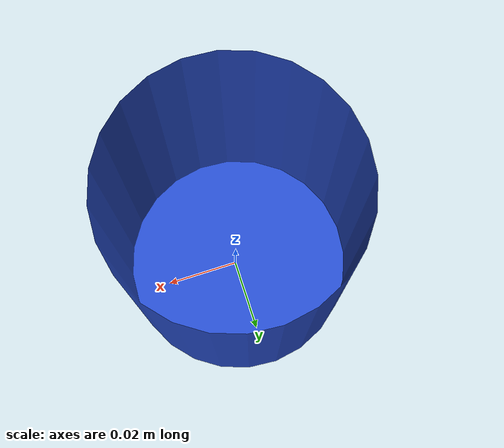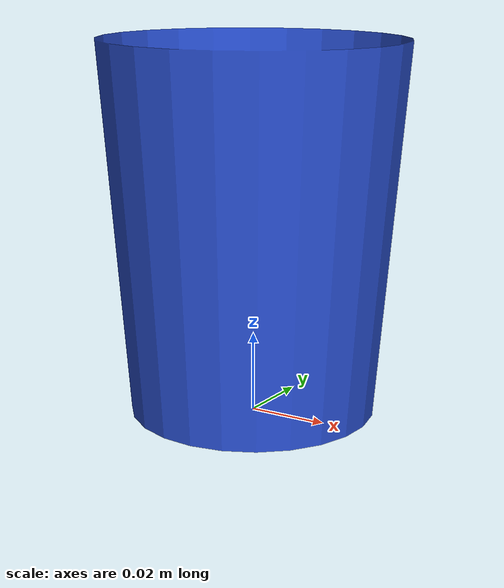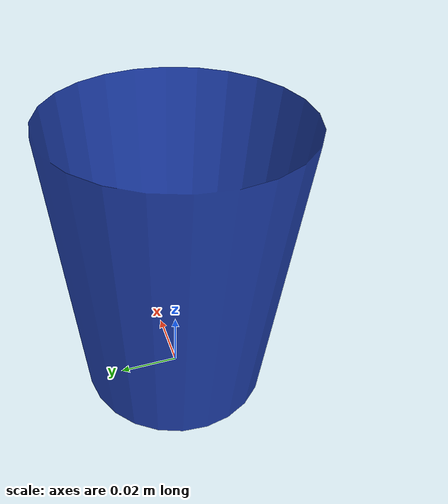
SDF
<?xml version='1.0'?>
<sdf version='1.6'>
  <model name='cup_glass_test'>
    <link name='link_0'>
      <inertial>
        <mass>0.0510344</mass>
        <inertia>
          <ixx>5.22719e-05</ixx>
          <ixy>0</ixy>
          <ixz>0</ixz>
          <iyy>5.22719e-05</iyy>
          <iyz>0</iyz>
          <izz>3.65038e-05</izz>
        </inertia>
        <pose frame=''>0 0 0.048 0 -0 0</pose>
      </inertial>
      <pose frame=''>0 -0 0 0 -0 0</pose>
      <visual name='visual'>
        <pose frame=''>0 0 0 0 -0 0</pose>
        <geometry>
          <mesh>
            <uri>model://cup_glass_test/meshes/cup_glass.dae</uri>
            <scale>1 1 1</scale>
          </mesh>
        </geometry>
        <material>
          <lighting>1</lighting>
          <script>
            <uri>file://media/materials/scripts/gazebo.material</uri>
            <name>Gazebo/Blue</name>
          </script>
        </material>
        <transparency>0</transparency>
        <cast_shadows>1</cast_shadows>
      </visual>
      <collision name='collision'>
        <laser_retro>0</laser_retro>
        <max_contacts>10</max_contacts>
        <pose frame=''>0 0 0 0 -0 0</pose>
        <geometry>
          <mesh>
            <uri>model://cup_glass_test/meshes/cup_glass.dae</uri>
            <scale>1 1 1</scale>
          </mesh>
        </geometry>
        <surface>
          <friction>
            <ode>
              <mu>1</mu>
              <mu2>1</mu2>
              <fdir1>0 0 0</fdir1>
              <slip1>0</slip1>
              <slip2>0</slip2>
            </ode>
            <torsional>
              <coefficient>1</coefficient>
              <patch_radius>0</patch_radius>
              <surface_radius>0</surface_radius>
              <use_patch_radius>1</use_patch_radius>
              <ode>
                <slip>0</slip>
              </ode>
            </torsional>
          </friction>
          <bounce>
            <restitution_coefficient>0</restitution_coefficient>
            <threshold>1e+06</threshold>
          </bounce>
          <contact>
            <collide_without_contact>0</collide_without_contact>
            <collide_without_contact_bitmask>1</collide_without_contact_bitmask>
            <collide_bitmask>1</collide_bitmask>
            <ode>
              <soft_cfm>0</soft_cfm>
              <soft_erp>0.2</soft_erp>
              <kp>1e+13</kp>
              <kd>1</kd>
              <max_vel>0.01</max_vel>
              <min_depth>0</min_depth>
            </ode>
            <bullet>
              <split_impulse>1</split_impulse>
              <split_impulse_penetration_threshold>-0.01</split_impulse_penetration_threshold>
              <soft_cfm>0</soft_cfm>
              <soft_erp>0.2</soft_erp>
              <kp>1e+13</kp>
              <kd>1</kd>
            </bullet>
          </contact>
        </surface>
      </collision>
    </link>
    <static>0</static>
    <allow_auto_disable>1</allow_auto_disable>
  </model>
</sdf>
